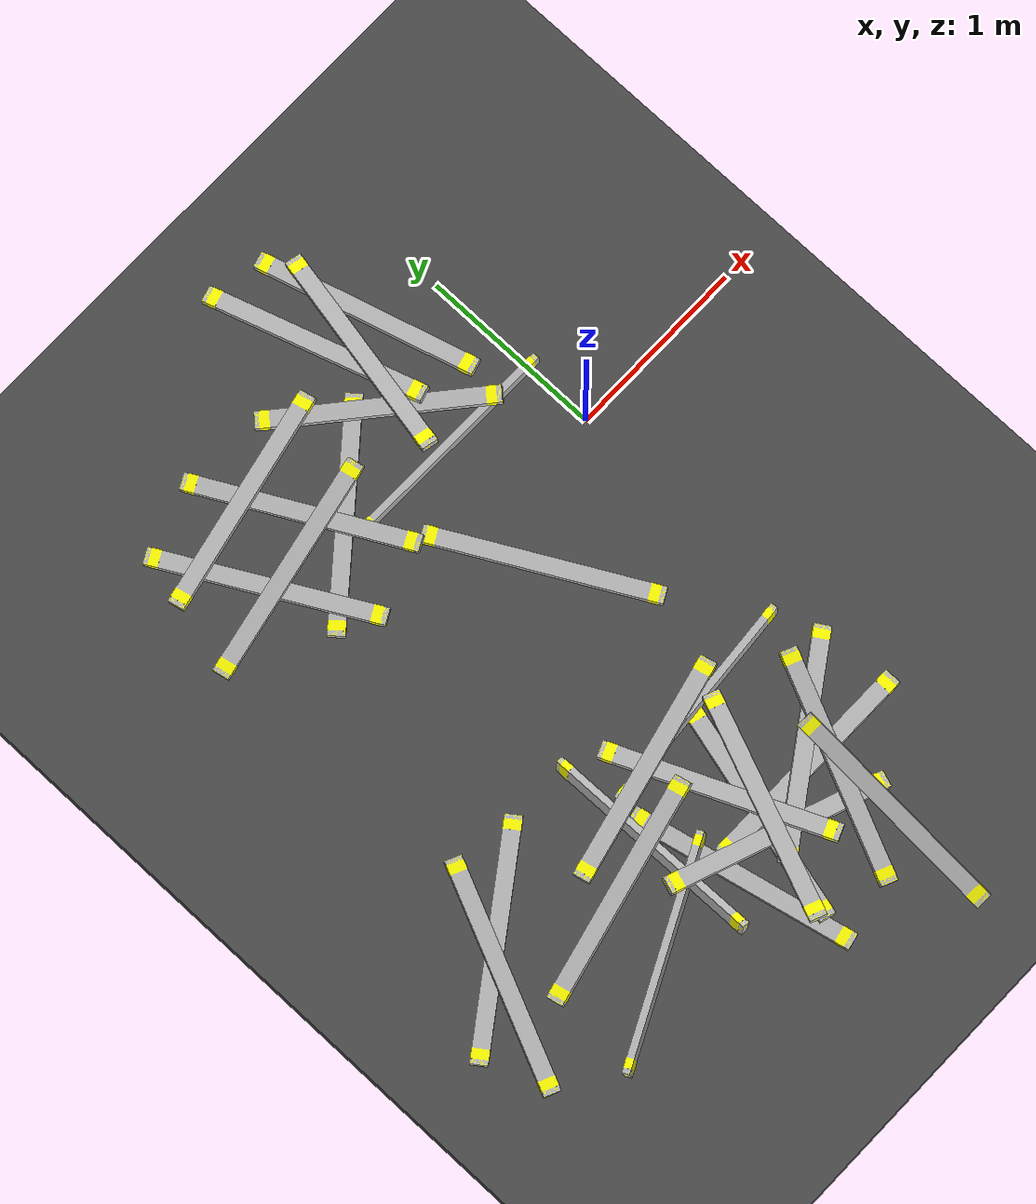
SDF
<sdf version="1.6">
 <world name="default">
  <model name="ground_plane">
   <static>1</static>
   <link name="link">
    <collision name="collision">
     <geometry><plane><normal>0 0 1</normal><size>100 100</size></plane></geometry>
     <surface><friction><ode><mu>100</mu><mu2>50</mu2></ode></friction></surface>
    </collision>
    <visual name="visual">
     <cast_shadows>0</cast_shadows>
     <geometry><plane><normal>0 0 1</normal><size>100 100</size></plane></geometry>
     <material>
      <script><uri>file://media/materials/scripts/gazebo.material</uri><name>Gazebo/Grey</name></script>
     </material>
    </visual>
   </link>
  </model>
  <model name="asphalt_plane">
   <static>1</static>
   <link name="link">
    <collision name="collision"><geometry><box><size>20 20 0.1</size></box></geometry></collision>
    <visual name="visual">
     <cast_shadows>0</cast_shadows>
     <geometry><box><size>20 20 0.1</size></box></geometry>
     <material>
      <script>
       <uri>model://asphalt_plane/materials/scripts</uri>
       <uri>model://asphalt_plane/materials/textures</uri>
       <name>vrc/asphalt</name>
      </script>
     </material>
    </visual>
   </link>
   <pose>0.013797 -0.037077 0 0 -0 0</pose>
  </model>
  <model name="lumber_2x4x48_clone">
   <link name="link">
    <inertial>
     <mass>1.4111</mass>
     <inertia><ixx>0.0011</ixx><ixy>0</ixy><ixz>0</ixz><iyy>0.1771</iyy><iyz>0</iyz><izz>0.1763</izz></inertia>
    </inertial>
    <collision name="collision">
     <geometry><box><size>1.2192 0.038 0.0888</size></box></geometry>
     <surface>
      <bounce><restitution_coefficient>0.01</restitution_coefficient><threshold>5</threshold></bounce>
      <friction><ode><mu>5</mu><mu2>5</mu2></ode></friction>
      <contact>
       <ode>
        <soft_cfm>0.001</soft_cfm>
        <kp>10000</kp>
        <kd>1000</kd>
        <max_vel>0.01</max_vel>
        <min_depth>0.001</min_depth>
       </ode>
      </contact>
     </surface>
    </collision>
    <visual name="visual">
     <geometry><mesh><uri>model://drc_practice_2x4/meshes/2x4x48.dae</uri><scale>1 1 1</scale></mesh></geometry>
    </visual>
   </link>
   <pose>-0.564857 0.384491 0.092532 -0.002121 -0.000933 -0.013698</pose>
  </model>
  <model name="lumber_2x4x48_clone_3_clone">
   <link name="link">
    <inertial>
     <mass>1.4111</mass>
     <inertia><ixx>0.0011</ixx><ixy>0</ixy><ixz>0</ixz><iyy>0.1771</iyy><iyz>0</iyz><izz>0.1763</izz></inertia>
    </inertial>
    <collision name="collision">
     <geometry><box><size>1.2192 0.038 0.0888</size></box></geometry>
     <surface>
      <bounce><restitution_coefficient>0.01</restitution_coefficient><threshold>5</threshold></bounce>
      <friction><ode><mu>5</mu><mu2>5</mu2></ode></friction>
      <contact>
       <ode>
        <soft_cfm>0.001</soft_cfm>
        <kp>10000</kp>
        <kd>1000</kd>
        <max_vel>0.01</max_vel>
        <min_depth>0.001</min_depth>
       </ode>
      </contact>
     </surface>
    </collision>
    <visual name="visual">
     <geometry><mesh><uri>model://drc_practice_2x4/meshes/2x4x48.dae</uri><scale>1 1 1</scale></mesh></geometry>
    </visual>
   </link>
   <pose>-0.673931 0.750288 0.149893 1.5775 -0.135791 -0.744502</pose>
  </model>
  <model name="lumber_2x4x48_clone_3_clone_0_clone_1">
   <link name="link">
    <inertial>
     <mass>1.4111</mass>
     <inertia><ixx>0.0011</ixx><ixy>0</ixy><ixz>0</ixz><iyy>0.1771</iyy><iyz>0</iyz><izz>0.1763</izz></inertia>
    </inertial>
    <collision name="collision">
     <geometry><box><size>1.2192 0.038 0.0888</size></box></geometry>
     <surface>
      <bounce><restitution_coefficient>0.01</restitution_coefficient><threshold>5</threshold></bounce>
      <friction><ode><mu>5</mu><mu2>5</mu2></ode></friction>
      <contact>
       <ode>
        <soft_cfm>0.001</soft_cfm>
        <kp>10000</kp>
        <kd>1000</kd>
        <max_vel>0.01</max_vel>
        <min_depth>0.001</min_depth>
       </ode>
      </contact>
     </surface>
    </collision>
    <visual name="visual">
     <geometry><mesh><uri>model://drc_practice_2x4/meshes/2x4x48.dae</uri><scale>1 1 1</scale></mesh></geometry>
    </visual>
   </link>
   <pose>-0.538699 0.992194 0.205181 1.58842 0.148295 1.35302</pose>
  </model>
  <model name="lumber_2x4x48_clone_1_clone">
   <link name="link">
    <inertial>
     <mass>1.4111</mass>
     <inertia><ixx>0.0011</ixx><ixy>0</ixy><ixz>0</ixz><iyy>0.1771</iyy><iyz>0</iyz><izz>0.1763</izz></inertia>
    </inertial>
    <collision name="collision">
     <geometry><box><size>1.2192 0.038 0.0888</size></box></geometry>
     <surface>
      <bounce><restitution_coefficient>0.01</restitution_coefficient><threshold>5</threshold></bounce>
      <friction><ode><mu>5</mu><mu2>5</mu2></ode></friction>
      <contact>
       <ode>
        <soft_cfm>0.001</soft_cfm>
        <kp>10000</kp>
        <kd>1000</kd>
        <max_vel>0.01</max_vel>
        <min_depth>0.001</min_depth>
       </ode>
      </contact>
     </surface>
    </collision>
    <visual name="visual">
     <geometry><mesh><uri>model://drc_practice_2x4/meshes/2x4x48.dae</uri><scale>1 1 1</scale></mesh></geometry>
    </visual>
   </link>
   <pose>-0.553502 -1.96521 0.103569 -1.58863 0.0579 0.002612</pose>
  </model>
  <model name="lumber_2x4x48_clone_3_clone_0_clone_0_clone">
   <link name="link">
    <inertial>
     <mass>1.4111</mass>
     <inertia><ixx>0.0011</ixx><ixy>0</ixy><ixz>0</ixz><iyy>0.1771</iyy><iyz>0</iyz><izz>0.1763</izz></inertia>
    </inertial>
    <collision name="collision">
     <geometry><box><size>1.2192 0.038 0.0888</size></box></geometry>
     <surface>
      <bounce><restitution_coefficient>0.01</restitution_coefficient><threshold>5</threshold></bounce>
      <friction><ode><mu>5</mu><mu2>5</mu2></ode></friction>
      <contact>
       <ode>
        <soft_cfm>0.001</soft_cfm>
        <kp>10000</kp>
        <kd>1000</kd>
        <max_vel>0.01</max_vel>
        <min_depth>0.001</min_depth>
       </ode>
      </contact>
     </surface>
    </collision>
    <visual name="visual">
     <geometry><mesh><uri>model://drc_practice_2x4/meshes/2x4x48.dae</uri><scale>1 1 1</scale></mesh></geometry>
    </visual>
   </link>
   <pose>-0.49034 -1.88332 0.145448 1.69439 0.124554 0.595716</pose>
  </model>
  <model name="lumber_2x4x48_clone_3_clone_0_clone_0_clone_0_clone">
   <link name="link">
    <inertial>
     <mass>1.4111</mass>
     <inertia><ixx>0.0011</ixx><ixy>0</ixy><ixz>0</ixz><iyy>0.1771</iyy><iyz>0</iyz><izz>0.1763</izz></inertia>
    </inertial>
    <collision name="collision">
     <geometry><box><size>1.2192 0.038 0.0888</size></box></geometry>
     <surface>
      <bounce><restitution_coefficient>0.01</restitution_coefficient><threshold>5</threshold></bounce>
      <friction><ode><mu>5</mu><mu2>5</mu2></ode></friction>
      <contact>
       <ode>
        <soft_cfm>0.001</soft_cfm>
        <kp>10000</kp>
        <kd>1000</kd>
        <max_vel>0.01</max_vel>
        <min_depth>0.001</min_depth>
       </ode>
      </contact>
     </surface>
    </collision>
    <visual name="visual">
     <geometry><mesh><uri>model://drc_practice_2x4/meshes/2x4x48.dae</uri><scale>1 1 1</scale></mesh></geometry>
    </visual>
   </link>
   <pose>-0.906626 -2.08733 0.17665 1.58904 -0.18272 2.81683</pose>
  </model>
  <model name="lumber_2x4x48_clone_0_clone">
   <link name="link">
    <inertial>
     <mass>1.4111</mass>
     <inertia><ixx>0.0011</ixx><ixy>0</ixy><ixz>0</ixz><iyy>0.1771</iyy><iyz>0</iyz><izz>0.1763</izz></inertia>
    </inertial>
    <collision name="collision">
     <geometry><box><size>1.2192 0.038 0.0888</size></box></geometry>
     <surface>
      <bounce><restitution_coefficient>0.01</restitution_coefficient><threshold>5</threshold></bounce>
      <friction><ode><mu>5</mu><mu2>5</mu2></ode></friction>
      <contact>
       <ode>
        <soft_cfm>0.001</soft_cfm>
        <kp>10000</kp>
        <kd>1000</kd>
        <max_vel>0.01</max_vel>
        <min_depth>0.001</min_depth>
       </ode>
      </contact>
     </surface>
    </collision>
    <visual name="visual">
     <geometry><mesh><uri>model://drc_practice_2x4/meshes/2x4x48.dae</uri><scale>1 1 1</scale></mesh></geometry>
    </visual>
   </link>
   <pose>-0.699456 -1.37402 0.124157 -0.067997 0.016586 0.081276</pose>
  </model>
  <model name="lumber_2x4x48_clone_3_clone_0_clone_1_clone">
   <link name="link">
    <inertial>
     <mass>1.4111</mass>
     <inertia><ixx>0.0011</ixx><ixy>0</ixy><ixz>0</ixz><iyy>0.1771</iyy><iyz>0</iyz><izz>0.1763</izz></inertia>
    </inertial>
    <collision name="collision">
     <geometry><box><size>1.2192 0.038 0.0888</size></box></geometry>
     <surface>
      <bounce><restitution_coefficient>0.01</restitution_coefficient><threshold>5</threshold></bounce>
      <friction><ode><mu>5</mu><mu2>5</mu2></ode></friction>
      <contact>
       <ode>
        <soft_cfm>0.001</soft_cfm>
        <kp>10000</kp>
        <kd>1000</kd>
        <max_vel>0.01</max_vel>
        <min_depth>0.001</min_depth>
       </ode>
      </contact>
     </surface>
    </collision>
    <visual name="visual">
     <geometry><mesh><uri>model://drc_practice_2x4/meshes/2x4x48.dae</uri><scale>1 1 1</scale></mesh></geometry>
    </visual>
   </link>
   <pose>-0.878244 -1.94423 0.084476 1.57731 0.032492 1.31092</pose>
  </model>
  <model name="lumber_2x4x48_clone_3_clone_0_clone_1_clone_clone_1">
   <link name="link">
    <inertial>
     <mass>1.4111</mass>
     <inertia><ixx>0.0011</ixx><ixy>0</ixy><ixz>0</ixz><iyy>0.1771</iyy><iyz>0</iyz><izz>0.1763</izz></inertia>
    </inertial>
    <collision name="collision">
     <geometry><box><size>1.2192 0.038 0.0888</size></box></geometry>
     <surface>
      <bounce><restitution_coefficient>0.01</restitution_coefficient><threshold>5</threshold></bounce>
      <friction><ode><mu>5</mu><mu2>5</mu2></ode></friction>
      <contact>
       <ode>
        <soft_cfm>0.001</soft_cfm>
        <kp>10000</kp>
        <kd>1000</kd>
        <max_vel>0.01</max_vel>
        <min_depth>0.001</min_depth>
       </ode>
      </contact>
     </surface>
    </collision>
    <visual name="visual">
     <geometry><mesh><uri>model://drc_practice_2x4/meshes/2x4x48.dae</uri><scale>1 1 1</scale></mesh></geometry>
    </visual>
   </link>
   <pose>-1.35986 -1.69214 0.170162 -2.9128 0.121941 1.56467</pose>
  </model>
  <model name="lumber_2x4x48_clone_3_clone_0_clone_1_clone_clone_2">
   <link name="link">
    <inertial>
     <mass>1.4111</mass>
     <inertia><ixx>0.0011</ixx><ixy>0</ixy><ixz>0</ixz><iyy>0.1771</iyy><iyz>0</iyz><izz>0.1763</izz></inertia>
    </inertial>
    <collision name="collision">
     <geometry><box><size>1.2192 0.038 0.0888</size></box></geometry>
     <surface>
      <bounce><restitution_coefficient>0.01</restitution_coefficient><threshold>5</threshold></bounce>
      <friction><ode><mu>5</mu><mu2>5</mu2></ode></friction>
      <contact>
       <ode>
        <soft_cfm>0.001</soft_cfm>
        <kp>10000</kp>
        <kd>1000</kd>
        <max_vel>0.01</max_vel>
        <min_depth>0.001</min_depth>
       </ode>
      </contact>
     </surface>
    </collision>
    <visual name="visual">
     <geometry><mesh><uri>model://drc_practice_2x4/meshes/2x4x48.dae</uri><scale>1 1 1</scale></mesh></geometry>
    </visual>
   </link>
   <pose>-1.68937 -2.08326 0.108067 -0.145886 -0.022296 0.453594</pose>
  </model>
  <model name="lumber_2x4x48_clone_3_clone_0_clone_clone">
   <link name="link">
    <inertial>
     <mass>1.4111</mass>
     <inertia><ixx>0.0011</ixx><ixy>0</ixy><ixz>0</ixz><iyy>0.1771</iyy><iyz>0</iyz><izz>0.1763</izz></inertia>
    </inertial>
    <collision name="collision">
     <geometry><box><size>1.2192 0.038 0.0888</size></box></geometry>
     <surface>
      <bounce><restitution_coefficient>0.01</restitution_coefficient><threshold>5</threshold></bounce>
      <friction><ode><mu>5</mu><mu2>5</mu2></ode></friction>
      <contact>
       <ode>
        <soft_cfm>0.001</soft_cfm>
        <kp>10000</kp>
        <kd>1000</kd>
        <max_vel>0.01</max_vel>
        <min_depth>0.001</min_depth>
       </ode>
      </contact>
     </surface>
    </collision>
    <visual name="visual">
     <geometry><mesh><uri>model://drc_practice_2x4/meshes/2x4x48.dae</uri><scale>1 1 1</scale></mesh></geometry>
    </visual>
   </link>
   <pose>-2.18032 -1.45176 0.067309 1.57859 -0.000151 0.618251</pose>
  </model>
  <model name="lumber_2x4x48_clone_3_clone_0_clone_1_clone_clone_4">
   <link name="link">
    <inertial>
     <mass>1.4111</mass>
     <inertia><ixx>0.0011</ixx><ixy>0</ixy><ixz>0</ixz><iyy>0.1771</iyy><iyz>0</iyz><izz>0.1763</izz></inertia>
    </inertial>
    <collision name="collision">
     <geometry><box><size>1.2192 0.038 0.0888</size></box></geometry>
     <surface>
      <bounce><restitution_coefficient>0.01</restitution_coefficient><threshold>5</threshold></bounce>
      <friction><ode><mu>5</mu><mu2>5</mu2></ode></friction>
      <contact>
       <ode>
        <soft_cfm>0.001</soft_cfm>
        <kp>10000</kp>
        <kd>1000</kd>
        <max_vel>0.01</max_vel>
        <min_depth>0.001</min_depth>
       </ode>
      </contact>
     </surface>
    </collision>
    <visual name="visual">
     <geometry><mesh><uri>model://drc_practice_2x4/meshes/2x4x48.dae</uri><scale>1 1 1</scale></mesh></geometry>
    </visual>
   </link>
   <pose>-1.15879 0.51416 0.067286 1.56858 -0.000402 0.690606</pose>
  </model>
  <model name="lumber_2x4x48_clone_3_clone_0_clone_clone_0_clone_0">
   <link name="link">
    <inertial>
     <mass>1.4111</mass>
     <inertia><ixx>0.0011</ixx><ixy>0</ixy><ixz>0</ixz><iyy>0.1771</iyy><iyz>0</iyz><izz>0.1763</izz></inertia>
    </inertial>
    <collision name="collision">
     <geometry><box><size>1.2192 0.038 0.0888</size></box></geometry>
     <surface>
      <bounce><restitution_coefficient>0.01</restitution_coefficient><threshold>5</threshold></bounce>
      <friction><ode><mu>5</mu><mu2>5</mu2></ode></friction>
      <contact>
       <ode>
        <soft_cfm>0.001</soft_cfm>
        <kp>10000</kp>
        <kd>1000</kd>
        <max_vel>0.01</max_vel>
        <min_depth>0.001</min_depth>
       </ode>
      </contact>
     </surface>
    </collision>
    <visual name="visual">
     <geometry><mesh><uri>model://drc_practice_2x4/meshes/2x4x48.dae</uri><scale>1 1 1</scale></mesh></geometry>
    </visual>
   </link>
   <pose>-0.951483 -1.75807 0.214328 -1.61202 -0.060314 -1.17536</pose>
  </model>
  <model name="lumber_2x4x48_clone_3_clone_0_clone_clone_0_clone_0_clone_2">
   <link name="link">
    <inertial>
     <mass>1.4111</mass>
     <inertia><ixx>0.0011</ixx><ixy>0</ixy><ixz>0</ixz><iyy>0.1771</iyy><iyz>0</iyz><izz>0.1763</izz></inertia>
    </inertial>
    <collision name="collision">
     <geometry><box><size>1.2192 0.038 0.0888</size></box></geometry>
     <surface>
      <bounce><restitution_coefficient>0.01</restitution_coefficient><threshold>5</threshold></bounce>
      <friction><ode><mu>5</mu><mu2>5</mu2></ode></friction>
      <contact>
       <ode>
        <soft_cfm>0.001</soft_cfm>
        <kp>10000</kp>
        <kd>1000</kd>
        <max_vel>0.01</max_vel>
        <min_depth>0.001</min_depth>
       </ode>
      </contact>
     </surface>
    </collision>
    <visual name="visual">
     <geometry><mesh><uri>model://drc_practice_2x4/meshes/2x4x48.dae</uri><scale>1 1 1</scale></mesh></geometry>
    </visual>
   </link>
   <pose>-1.16388 -2.10248 0.065827 -1.54823 -0.000721 -1.35467</pose>
  </model>
  <model name="lumber_2x4x48_clone_3_clone_0_clone_clone_0_clone_0_clone_3">
   <link name="link">
    <inertial>
     <mass>1.4111</mass>
     <inertia><ixx>0.0011</ixx><ixy>0</ixy><ixz>0</ixz><iyy>0.1771</iyy><iyz>0</iyz><izz>0.1763</izz></inertia>
    </inertial>
    <collision name="collision">
     <geometry><box><size>1.2192 0.038 0.0888</size></box></geometry>
     <surface>
      <bounce><restitution_coefficient>0.01</restitution_coefficient><threshold>5</threshold></bounce>
      <friction><ode><mu>5</mu><mu2>5</mu2></ode></friction>
      <contact>
       <ode>
        <soft_cfm>0.001</soft_cfm>
        <kp>10000</kp>
        <kd>1000</kd>
        <max_vel>0.01</max_vel>
        <min_depth>0.001</min_depth>
       </ode>
      </contact>
     </surface>
    </collision>
    <visual name="visual">
     <geometry><mesh><uri>model://drc_practice_2x4/meshes/2x4x48.dae</uri><scale>1 1 1</scale></mesh></geometry>
    </visual>
   </link>
   <pose>-0.359989 1.13009 0.109413 -1.58589 -0.067677 -1.31124</pose>
  </model>
  <model name="lumber_2x4x48_clone_3_clone_0_clone_clone_0_clone_0_clone_6">
   <link name="link">
    <inertial>
     <mass>1.4111</mass>
     <inertia><ixx>0.0011</ixx><ixy>0</ixy><ixz>0</ixz><iyy>0.1771</iyy><iyz>0</iyz><izz>0.1763</izz></inertia>
    </inertial>
    <collision name="collision">
     <geometry><box><size>1.2192 0.038 0.0888</size></box></geometry>
     <surface>
      <bounce><restitution_coefficient>0.01</restitution_coefficient><threshold>5</threshold></bounce>
      <friction><ode><mu>5</mu><mu2>5</mu2></ode></friction>
      <contact>
       <ode>
        <soft_cfm>0.001</soft_cfm>
        <kp>10000</kp>
        <kd>1000</kd>
        <max_vel>0.01</max_vel>
        <min_depth>0.001</min_depth>
       </ode>
      </contact>
     </surface>
    </collision>
    <visual name="visual">
     <geometry><mesh><uri>model://drc_practice_2x4/meshes/2x4x48.dae</uri><scale>1 1 1</scale></mesh></geometry>
    </visual>
   </link>
   <pose>-1.68208 0.538825 0.089614 -1.56326 -0.035912 -1.08126</pose>
  </model>
  <model name="lumber_2x4x48_clone_3_clone_0_clone_clone_0_clone_0_clone_7">
   <link name="link">
    <inertial>
     <mass>1.4111</mass>
     <inertia><ixx>0.0011</ixx><ixy>0</ixy><ixz>0</ixz><iyy>0.1771</iyy><iyz>0</iyz><izz>0.1763</izz></inertia>
    </inertial>
    <collision name="collision">
     <geometry><box><size>1.2192 0.038 0.0888</size></box></geometry>
     <surface>
      <bounce><restitution_coefficient>0.01</restitution_coefficient><threshold>5</threshold></bounce>
      <friction><ode><mu>5</mu><mu2>5</mu2></ode></friction>
      <contact>
       <ode>
        <soft_cfm>0.001</soft_cfm>
        <kp>10000</kp>
        <kd>1000</kd>
        <max_vel>0.01</max_vel>
        <min_depth>0.001</min_depth>
       </ode>
      </contact>
     </surface>
    </collision>
    <visual name="visual">
     <geometry><mesh><uri>model://drc_practice_2x4/meshes/2x4x48.dae</uri><scale>1 1 1</scale></mesh></geometry>
    </visual>
   </link>
   <pose>-1.30591 0.66376 0.124746 -1.52943 -0.093167 -1.10556</pose>
  </model>
  <model name="lumber_2x4x48_clone_3_clone_0_clone_clone_0_clone_0_clone_0_clone">
   <link name="link">
    <inertial>
     <mass>1.4111</mass>
     <inertia><ixx>0.0011</ixx><ixy>0</ixy><ixz>0</ixz><iyy>0.1771</iyy><iyz>0</iyz><izz>0.1763</izz></inertia>
    </inertial>
    <collision name="collision">
     <geometry><box><size>1.2192 0.038 0.0888</size></box></geometry>
     <surface>
      <bounce><restitution_coefficient>0.01</restitution_coefficient><threshold>5</threshold></bounce>
      <friction><ode><mu>5</mu><mu2>5</mu2></ode></friction>
      <contact>
       <ode>
        <soft_cfm>0.001</soft_cfm>
        <kp>10000</kp>
        <kd>1000</kd>
        <max_vel>0.01</max_vel>
        <min_depth>0.001</min_depth>
       </ode>
      </contact>
     </surface>
    </collision>
    <visual name="visual">
     <geometry><mesh><uri>model://drc_practice_2x4/meshes/2x4x48.dae</uri><scale>1 1 1</scale></mesh></geometry>
    </visual>
   </link>
   <pose>-0.686721 -0.35677 0.067655 -1.5708 0 -1.07855</pose>
  </model>
  <model name="lumber_2x4x48_clone_3_clone_0_clone_clone_0_clone_0_clone_9">
   <link name="link">
    <inertial>
     <mass>1.4111</mass>
     <inertia><ixx>0.0011</ixx><ixy>0</ixy><ixz>0</ixz><iyy>0.1771</iyy><iyz>0</iyz><izz>0.1763</izz></inertia>
    </inertial>
    <collision name="collision">
     <geometry><box><size>1.2192 0.038 0.0888</size></box></geometry>
     <surface>
      <bounce><restitution_coefficient>0.01</restitution_coefficient><threshold>5</threshold></bounce>
      <friction><ode><mu>5</mu><mu2>5</mu2></ode></friction>
      <contact>
       <ode>
        <soft_cfm>0.001</soft_cfm>
        <kp>10000</kp>
        <kd>1000</kd>
        <max_vel>0.01</max_vel>
        <min_depth>0.001</min_depth>
       </ode>
      </contact>
     </surface>
    </collision>
    <visual name="visual">
     <geometry><mesh><uri>model://drc_practice_2x4/meshes/2x4x48.dae</uri><scale>1 1 1</scale></mesh></geometry>
    </visual>
   </link>
   <pose>-0.6509 1.19851 0.142043 -1.57859 -0.122944 -1.29548</pose>
  </model>
  <model name="lumber_2x4x48_clone_3_clone_0_clone_clone_0_clone_0_clone_11_clone_0">
   <link name="link">
    <inertial>
     <mass>1.4111</mass>
     <inertia><ixx>0.0011</ixx><ixy>0</ixy><ixz>0</ixz><iyy>0.1771</iyy><iyz>0</iyz><izz>0.1763</izz></inertia>
    </inertial>
    <collision name="collision">
     <geometry><box><size>1.2192 0.038 0.0888</size></box></geometry>
     <surface>
      <bounce><restitution_coefficient>0.01</restitution_coefficient><threshold>5</threshold></bounce>
      <friction><ode><mu>5</mu><mu2>5</mu2></ode></friction>
      <contact>
       <ode>
        <soft_cfm>0.001</soft_cfm>
        <kp>10000</kp>
        <kd>1000</kd>
        <max_vel>0.01</max_vel>
        <min_depth>0.001</min_depth>
       </ode>
      </contact>
     </surface>
    </collision>
    <visual name="visual">
     <geometry><mesh><uri>model://drc_practice_2x4/meshes/2x4x48.dae</uri><scale>1 1 1</scale></mesh></geometry>
    </visual>
   </link>
   <pose>-0.867646 -1.96309 0.264026 1.58437 -0.07217 -1.96654</pose>
  </model>
  <model name="lumber_2x4x48_clone_3_clone_0_clone_clone_0_clone_0_clone_11_clone_3">
   <link name="link">
    <inertial>
     <mass>1.4111</mass>
     <inertia><ixx>0.0011</ixx><ixy>0</ixy><ixz>0</ixz><iyy>0.1771</iyy><iyz>0</iyz><izz>0.1763</izz></inertia>
    </inertial>
    <collision name="collision">
     <geometry><box><size>1.2192 0.038 0.0888</size></box></geometry>
     <surface>
      <bounce><restitution_coefficient>0.01</restitution_coefficient><threshold>5</threshold></bounce>
      <friction><ode><mu>5</mu><mu2>5</mu2></ode></friction>
      <contact>
       <ode>
        <soft_cfm>0.001</soft_cfm>
        <kp>10000</kp>
        <kd>1000</kd>
        <max_vel>0.01</max_vel>
        <min_depth>0.001</min_depth>
       </ode>
      </contact>
     </surface>
    </collision>
    <visual name="visual">
     <geometry><mesh><uri>model://drc_practice_2x4/meshes/2x4x48.dae</uri><scale>1 1 1</scale></mesh></geometry>
    </visual>
   </link>
   <pose>-0.444282 -2.41712 0.166184 -1.29672 0.143762 -1.60136</pose>
  </model>
  <model name="lumber_2x4x48_clone_3_clone_0_clone_clone_0_clone_0_clone_11_clone_4">
   <link name="link">
    <inertial>
     <mass>1.4111</mass>
     <inertia><ixx>0.0011</ixx><ixy>0</ixy><ixz>0</ixz><iyy>0.1771</iyy><iyz>0</iyz><izz>0.1763</izz></inertia>
    </inertial>
    <collision name="collision">
     <geometry><box><size>1.2192 0.038 0.0888</size></box></geometry>
     <surface>
      <bounce><restitution_coefficient>0.01</restitution_coefficient><threshold>5</threshold></bounce>
      <friction><ode><mu>5</mu><mu2>5</mu2></ode></friction>
      <contact>
       <ode>
        <soft_cfm>0.001</soft_cfm>
        <kp>10000</kp>
        <kd>1000</kd>
        <max_vel>0.01</max_vel>
        <min_depth>0.001</min_depth>
       </ode>
      </contact>
     </surface>
    </collision>
    <visual name="visual">
     <geometry><mesh><uri>model://drc_practice_2x4/meshes/2x4x48.dae</uri><scale>1 1 1</scale></mesh></geometry>
    </visual>
   </link>
   <pose>-0.469038 -2.0793 0.166097 -1.67932 0.111826 -1.98419</pose>
  </model>
  <model name="lumber_2x4x48_clone_3_clone_0_clone_clone_0_clone_0_clone_11_clone_14_clone_clone_3">
   <link name="link">
    <inertial>
     <mass>1.4111</mass>
     <inertia><ixx>0.0011</ixx><ixy>0</ixy><ixz>0</ixz><iyy>0.1771</iyy><iyz>0</iyz><izz>0.1763</izz></inertia>
    </inertial>
    <collision name="collision">
     <geometry><box><size>1.2192 0.038 0.0888</size></box></geometry>
     <surface>
      <bounce><restitution_coefficient>0.01</restitution_coefficient><threshold>5</threshold></bounce>
      <friction><ode><mu>5</mu><mu2>5</mu2></ode></friction>
      <contact>
       <ode>
        <soft_cfm>0.001</soft_cfm>
        <kp>10000</kp>
        <kd>1000</kd>
        <max_vel>0.01</max_vel>
        <min_depth>0.001</min_depth>
       </ode>
      </contact>
     </surface>
    </collision>
    <visual name="visual">
     <geometry><mesh><uri>model://drc_practice_2x4/meshes/2x4x48.dae</uri><scale>1 1 1</scale></mesh></geometry>
    </visual>
   </link>
   <pose>-1.55173 0.511478 0.142992 1.57441 0.109792 -2.95303</pose>
  </model>
  <model name="lumber_2x4x48_clone_3_clone_0_clone_clone_0_clone_0_clone_11_clone_14_clone_clone_4">
   <link name="link">
    <inertial>
     <mass>1.4111</mass>
     <inertia><ixx>0.0011</ixx><ixy>0</ixy><ixz>0</ixz><iyy>0.1771</iyy><iyz>0</iyz><izz>0.1763</izz></inertia>
    </inertial>
    <collision name="collision">
     <geometry><box><size>1.2192 0.038 0.0888</size></box></geometry>
     <surface>
      <bounce><restitution_coefficient>0.01</restitution_coefficient><threshold>5</threshold></bounce>
      <friction><ode><mu>5</mu><mu2>5</mu2></ode></friction>
      <contact>
       <ode>
        <soft_cfm>0.001</soft_cfm>
        <kp>10000</kp>
        <kd>1000</kd>
        <max_vel>0.01</max_vel>
        <min_depth>0.001</min_depth>
       </ode>
      </contact>
     </surface>
    </collision>
    <visual name="visual">
     <geometry><mesh><uri>model://drc_practice_2x4/meshes/2x4x48.dae</uri><scale>1 1 1</scale></mesh></geometry>
    </visual>
   </link>
   <pose>-1.62505 -1.73186 0.184704 1.73412 0.182414 -2.9235</pose>
  </model>
  <model name="lumber_2x4x48_clone_3_clone_0_clone_clone_0_clone_0_clone_11_clone_14_clone_clone_5">
   <link name="link">
    <inertial>
     <mass>1.4111</mass>
     <inertia><ixx>0.0011</ixx><ixy>0</ixy><ixz>0</ixz><iyy>0.1771</iyy><iyz>0</iyz><izz>0.1763</izz></inertia>
    </inertial>
    <collision name="collision">
     <geometry><box><size>1.2192 0.038 0.0888</size></box></geometry>
     <surface>
      <bounce><restitution_coefficient>0.01</restitution_coefficient><threshold>5</threshold></bounce>
      <friction><ode><mu>5</mu><mu2>5</mu2></ode></friction>
      <contact>
       <ode>
        <soft_cfm>0.001</soft_cfm>
        <kp>10000</kp>
        <kd>1000</kd>
        <max_vel>0.01</max_vel>
        <min_depth>0.001</min_depth>
       </ode>
      </contact>
     </surface>
    </collision>
    <visual name="visual">
     <geometry><mesh><uri>model://drc_practice_2x4/meshes/2x4x48.dae</uri><scale>1 1 1</scale></mesh></geometry>
    </visual>
   </link>
   <pose>-1.1174 -1.42644 0.230388 1.62263 0.057924 -2.91525</pose>
  </model>
  <model name="lumber_2x4x48_clone_3_clone_0_clone_clone_0_clone_0_clone_11_clone_14_clone_clone_8">
   <link name="link">
    <inertial>
     <mass>1.4111</mass>
     <inertia><ixx>0.0011</ixx><ixy>0</ixy><ixz>0</ixz><iyy>0.1771</iyy><iyz>0</iyz><izz>0.1763</izz></inertia>
    </inertial>
    <collision name="collision">
     <geometry><box><size>1.2192 0.038 0.0888</size></box></geometry>
     <surface>
      <bounce><restitution_coefficient>0.01</restitution_coefficient><threshold>5</threshold></bounce>
      <friction><ode><mu>5</mu><mu2>5</mu2></ode></friction>
      <contact>
       <ode>
        <soft_cfm>0.001</soft_cfm>
        <kp>10000</kp>
        <kd>1000</kd>
        <max_vel>0.01</max_vel>
        <min_depth>0.001</min_depth>
       </ode>
      </contact>
     </surface>
    </collision>
    <visual name="visual">
     <geometry><mesh><uri>model://drc_practice_2x4/meshes/2x4x48.dae</uri><scale>1 1 1</scale></mesh></geometry>
    </visual>
   </link>
   <pose>-1.45651 0.912696 0.133964 1.65661 0.041653 -2.93097</pose>
  </model>
  <model name="lumber_2x4x48_clone_3_clone_0_clone_clone_0_clone_0_clone_11_clone_clone_0">
   <link name="link">
    <inertial>
     <mass>1.4111</mass>
     <inertia><ixx>0.0011</ixx><ixy>0</ixy><ixz>0</ixz><iyy>0.1771</iyy><iyz>0</iyz><izz>0.1763</izz></inertia>
    </inertial>
    <collision name="collision">
     <geometry><box><size>1.2192 0.038 0.0888</size></box></geometry>
     <surface>
      <bounce><restitution_coefficient>0.01</restitution_coefficient><threshold>5</threshold></bounce>
      <friction><ode><mu>5</mu><mu2>5</mu2></ode></friction>
      <contact>
       <ode>
        <soft_cfm>0.001</soft_cfm>
        <kp>10000</kp>
        <kd>1000</kd>
        <max_vel>0.01</max_vel>
        <min_depth>0.001</min_depth>
       </ode>
      </contact>
     </surface>
    </collision>
    <visual name="visual">
     <geometry><mesh><uri>model://drc_practice_2x4/meshes/2x4x48.dae</uri><scale>1 1 1</scale></mesh></geometry>
    </visual>
   </link>
   <pose>-2.29316 -1.59684 0.101837 1.48707 0.049643 -1.98916</pose>
  </model>
 </world>
</sdf>
